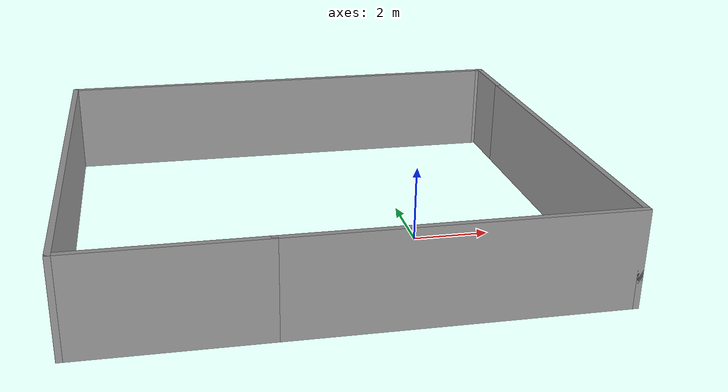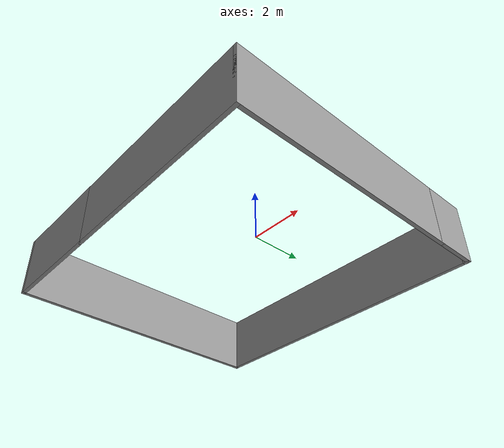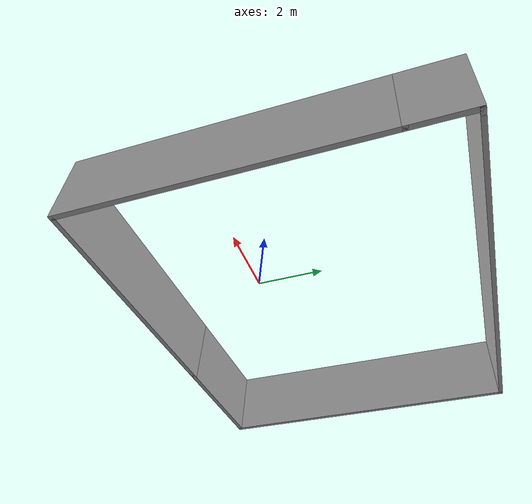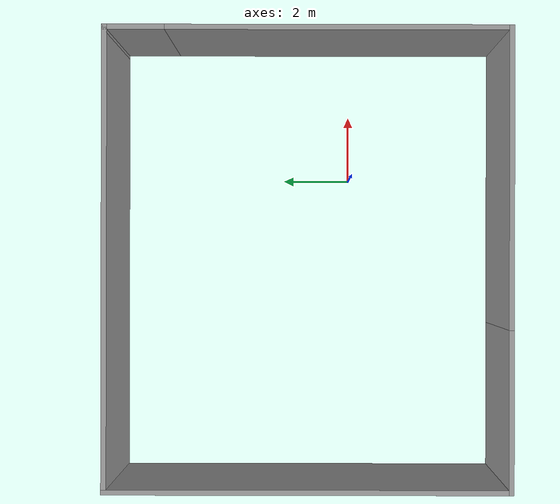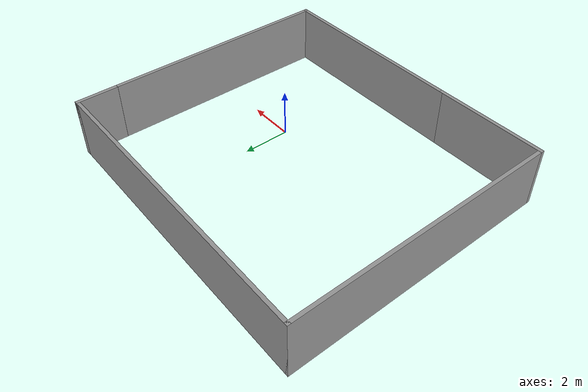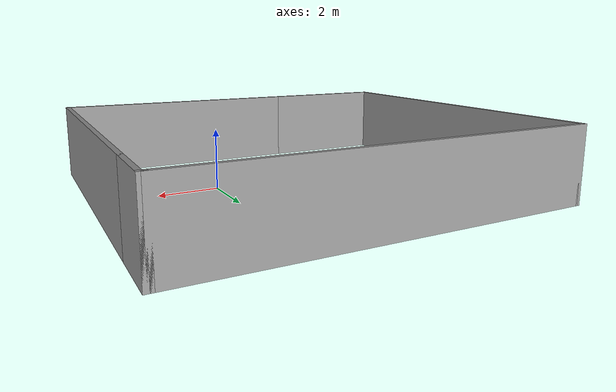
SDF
<?xml version='1.0'?>
<sdf version='1.7'>
  <model name='Untitled'>
    <pose>-2.445 1.255 0 0 -0 0</pose>
    <link name='Wall_0'>
      <collision name='Wall_0_Collision'>
        <geometry>
          <box>
            <size>8.5 0.15 2.5</size>
          </box>
        </geometry>
        <pose>0 0 1.25 0 -0 0</pose>
      </collision>
      <visual name='Wall_0_Visual'>
        <pose>0 0 1.25 0 -0 0</pose>
        <geometry>
          <box>
            <size>8.5 0.15 2.5</size>
          </box>
        </geometry>
        <material>
          <script>
            <uri>file://media/materials/scripts/gazebo.material</uri>
            <name>Gazebo/Grey</name>
          </script>
          <ambient>1 1 1 1</ambient>
        </material>
        <meta>
          <layer>0</layer>
        </meta>
      </visual>
      <pose>2.3 -5.675 0 0 -0 0</pose>
    </link>
    <link name='Wall_1'>
      <collision name='Wall_1_Collision'>
        <geometry>
          <box>
            <size>9.75 0.15 2.5</size>
          </box>
        </geometry>
        <pose>0 0 1.25 0 -0 0</pose>
      </collision>
      <visual name='Wall_1_Visual'>
        <pose>0 0 1.25 0 -0 0</pose>
        <geometry>
          <box>
            <size>9.75 0.15 2.5</size>
          </box>
        </geometry>
        <material>
          <script>
            <uri>file://media/materials/scripts/gazebo.material</uri>
            <name>Gazebo/Grey</name>
          </script>
          <ambient>1 1 1 1</ambient>
        </material>
        <meta>
          <layer>0</layer>
        </meta>
      </visual>
      <pose>6.475 -0.875 0 0 -0 1.5708</pose>
    </link>
    <link name='Wall_3'>
      <collision name='Wall_3_Collision'>
        <geometry>
          <box>
            <size>4.75 0.15 2.5</size>
          </box>
        </geometry>
        <pose>0 0 1.25 0 -0 0</pose>
      </collision>
      <visual name='Wall_3_Visual'>
        <pose>0 0 1.25 0 -0 0</pose>
        <geometry>
          <box>
            <size>4.75 0.15 2.5</size>
          </box>
        </geometry>
        <material>
          <script>
            <uri>file://media/materials/scripts/gazebo.material</uri>
            <name>Gazebo/Grey</name>
          </script>
          <ambient>1 1 1 1</ambient>
        </material>
        <meta>
          <layer>0</layer>
        </meta>
      </visual>
      <pose>-4.175 -5.675 0 0 -0 3.14159</pose>
    </link>
    <link name='Wall_4'>
      <collision name='Wall_4_Collision'>
        <geometry>
          <box>
            <size>11.5 0.15 2.5</size>
          </box>
        </geometry>
        <pose>0 0 1.25 0 -0 0</pose>
      </collision>
      <visual name='Wall_4_Visual'>
        <pose>0 0 1.25 0 -0 0</pose>
        <geometry>
          <box>
            <size>11.5 0.15 2.5</size>
          </box>
        </geometry>
        <material>
          <script>
            <uri>file://media/materials/scripts/gazebo.material</uri>
            <name>Gazebo/Grey</name>
          </script>
          <ambient>1 1 1 1</ambient>
        </material>
        <meta>
          <layer>0</layer>
        </meta>
      </visual>
      <pose>-6.475 -0 0 0 -0 1.5708</pose>
    </link>
    <link name='Wall_5'>
      <collision name='Wall_5_Collision'>
        <geometry>
          <box>
            <size>13 0.15 2.5</size>
          </box>
        </geometry>
        <pose>0 0 1.25 0 -0 0</pose>
      </collision>
      <visual name='Wall_5_Visual'>
        <pose>0 0 1.25 0 -0 0</pose>
        <geometry>
          <box>
            <size>13 0.15 2.5</size>
          </box>
        </geometry>
        <material>
          <script>
            <uri>file://media/materials/scripts/gazebo.material</uri>
            <name>Gazebo/Grey</name>
          </script>
          <ambient>1 1 1 1</ambient>
        </material>
        <meta>
          <layer>0</layer>
        </meta>
      </visual>
      <pose>-0.05 5.675 0 0 -0 0</pose>
    </link>
    <link name='Wall_6'>
      <collision name='Wall_6_Collision'>
        <geometry>
          <box>
            <size>0.25 0.15 2.5</size>
          </box>
        </geometry>
        <pose>0 0 1.25 0 -0 0</pose>
      </collision>
      <visual name='Wall_6_Visual'>
        <pose>0 0 1.25 0 -0 0</pose>
        <geometry>
          <box>
            <size>0.25 0.15 2.5</size>
          </box>
        </geometry>
        <material>
          <script>
            <uri>file://media/materials/scripts/gazebo.material</uri>
            <name>Gazebo/Grey</name>
          </script>
          <ambient>1 1 1 1</ambient>
        </material>
        <meta>
          <layer>0</layer>
        </meta>
      </visual>
      <pose>6.425 5.675 0 0 -0 0</pose>
    </link>
    <link name='Wall_7'>
      <collision name='Wall_7_Collision'>
        <geometry>
          <box>
            <size>1.9 0.15 2.5</size>
          </box>
        </geometry>
        <pose>0 0 1.25 0 -0 0</pose>
      </collision>
      <visual name='Wall_7_Visual'>
        <pose>0 0 1.25 0 -0 0</pose>
        <geometry>
          <box>
            <size>1.9 0.15 2.5</size>
          </box>
        </geometry>
        <material>
          <script>
            <uri>file://media/materials/scripts/gazebo.material</uri>
            <name>Gazebo/Grey</name>
          </script>
          <ambient>1 1 1 1</ambient>
        </material>
        <meta>
          <layer>0</layer>
        </meta>
      </visual>
      <pose>6.475 4.8 0 0 -0 -1.5708</pose>
    </link>
    <static>1</static>
  </model>
</sdf>
